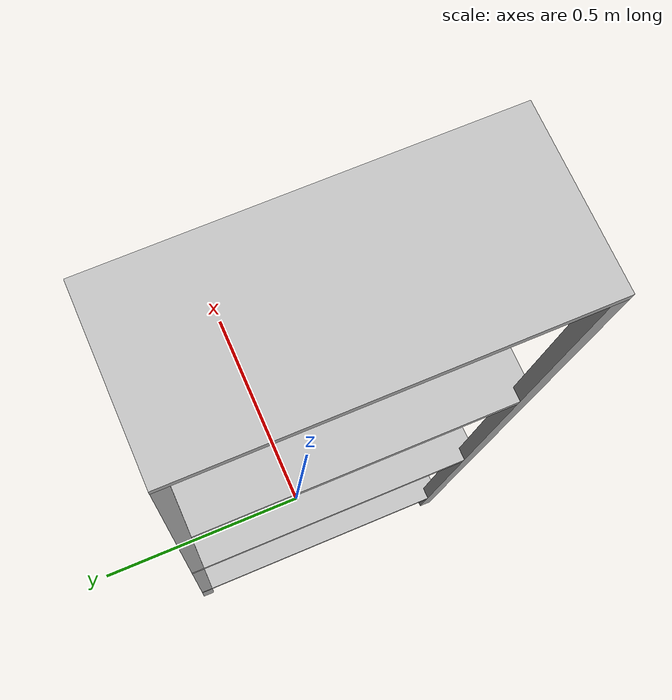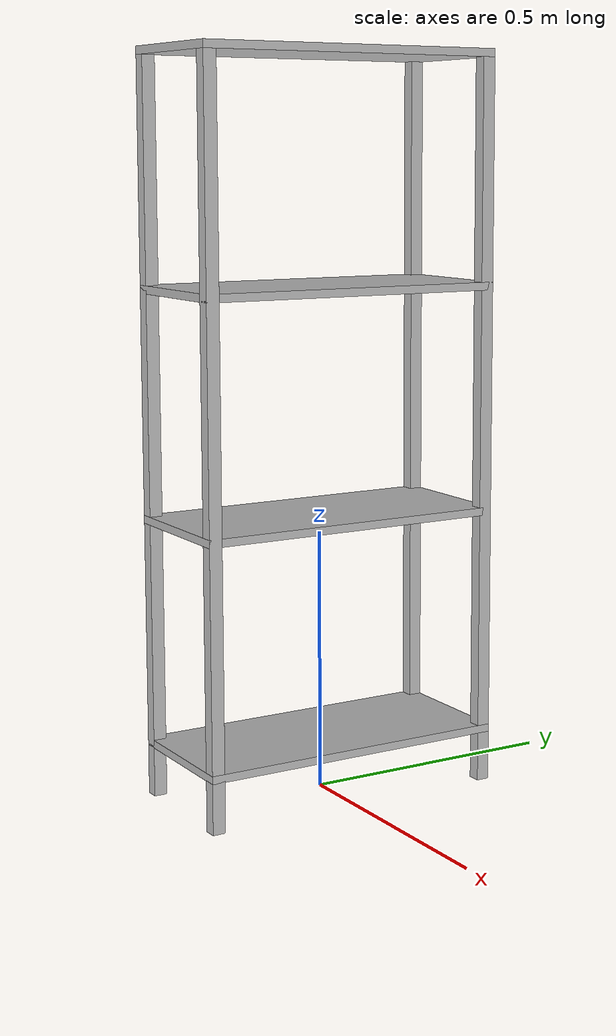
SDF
<?xml version="1.0" ?>
<sdf version="1.6">
  <model name="rwc2024/shelf">
    <static>true</static>
    <link name="1_link">
      <collision name="1_col">
        <geometry>
          <box>
            <size>0.27 0.6 0.015</size>
          </box>
        </geometry>
      </collision>
      <visual name="1_vis">
        <geometry>
          <box>
            <size>0.27 0.6 0.015</size>
          </box>
        </geometry>
      </visual>
      <pose>0.0 0.0 1.3925 0 0 0</pose>
    </link>
    <link name="2_link">
      <collision name="2_col">
        <geometry>
          <box>
            <size>0.025 0.025 1.385</size>
          </box>
        </geometry>
      </collision>
      <visual name="2_vis">
        <geometry>
          <box>
            <size>0.025 0.025 1.385</size>
          </box>
        </geometry>
      </visual>
      <pose>-0.1225 -0.2875 0.6925 0 0 0</pose>
    </link>
    <link name="3_link">
      <collision name="3_col">
        <geometry>
          <box>
            <size>0.025 0.025 1.385</size>
          </box>
        </geometry>
      </collision>
      <visual name="3_vis">
        <geometry>
          <box>
            <size>0.025 0.025 1.385</size>
          </box>
        </geometry>
      </visual>
      <pose>0.1225 -0.2875 0.6925 0 0 0</pose>
    </link>
    <link name="4_link">
      <collision name="4_col">
        <geometry>
          <box>
            <size>0.025 0.025 1.385</size>
          </box>
        </geometry>
      </collision>
      <visual name="4_vis">
        <geometry>
          <box>
            <size>0.025 0.025 1.385</size>
          </box>
        </geometry>
      </visual>
      <pose>-0.1225 0.2875 0.6925 0 0 0</pose>
    </link>
    <link name="5_link">
      <collision name="5_col">
        <geometry>
          <box>
            <size>0.025 0.025 1.385</size>
          </box>
        </geometry>
      </collision>
      <visual name="5_vis">
        <geometry>
          <box>
            <size>0.025 0.025 1.385</size>
          </box>
        </geometry>
      </visual>
      <pose>0.1225 0.2875 0.6925 0 0 0</pose>
    </link>
    <link name="shelf_1">
      <collision name="shelf_1_col">
        <geometry>
          <box>
            <size>0.27 0.6 0.015</size>
          </box>
        </geometry>
      </collision>
      <visual name="shelf_1_vis">
        <geometry>
          <box>
            <size>0.27 0.6 0.015</size>
          </box>
        </geometry>
      </visual>
      <pose>0.0 0.0 0.1025 0 0 0</pose>
    </link>
    <link name="shelf_2">
      <collision name="shelf_2_col">
        <geometry>
          <box>
            <size>0.27 0.6 0.015</size>
          </box>
        </geometry>
      </collision>
      <visual name="shelf_2_vis">
        <geometry>
          <box>
            <size>0.27 0.6 0.015</size>
          </box>
        </geometry>
      </visual>
      <pose>0.0 0.0 0.5325 0 0 0</pose>
    </link>
    <link name="shelf_3">
      <collision name="shelf_3_col">
        <geometry>
          <box>
            <size>0.27 0.6 0.015</size>
          </box>
        </geometry>
      </collision>
      <visual name="shelf_3_vis">
        <geometry>
          <box>
            <size>0.27 0.6 0.015</size>
          </box>
        </geometry>
      </visual>
      <pose>0.0 0.0 0.9625 0 0 0</pose>
    </link>
    <link name="shelf1">
      <virtual_volume name="shelf1_vv">
        <geometry>
          <box>
            <size>0.25 0.54 0.3</size>
          </box>
        </geometry>
        <pose>0.0 0.0 0.28 0 0 0</pose>
      </virtual_volume>
    </link>
    <link name="shelf2">
      <virtual_volume name="shelf2_vv">
        <geometry>
          <box>
            <size>0.25 0.54 0.3</size>
          </box>
        </geometry>
        <pose>0.0 0.0 0.71 0 0 0</pose>
      </virtual_volume>
    </link>
    <link name="shelf3">
      <virtual_volume name="shelf3_vv">
        <geometry>
          <box>
            <size>0.25 0.54 0.30</size>
          </box>
        </geometry>
        <pose>0.0 0.0 1.14 0 0 0</pose>
      </virtual_volume>
    </link>
    <link name="on_top_of">
      <virtual_volume name="on_top_of_vv">
        <geometry>
          <box>
            <size>0.25 0.54 0.25</size>
          </box>
        </geometry>
        <pose>0.0 0.0 1.115 0 0 0</pose>
      </virtual_volume>
    </link>
    <link name="shelf4">
      <virtual_volume name="shelf4_vv">
        <geometry>
          <box>
            <size>0.25 0.54 0.25</size>
          </box>
        </geometry>
        <pose>0.0 0.0 1.545 0 0 0</pose>
      </virtual_volume>
    </link>
    <link name="in_front_of">
      <virtual_volume name="in_front_of_vv">
        <geometry>
          <box>
            <size>0.2 0.4 0.01</size>
          </box>
        </geometry>
        <pose>0.635 0.0 0.005 0 0 0</pose>
      </virtual_volume>
    </link>
  </model>
</sdf>
